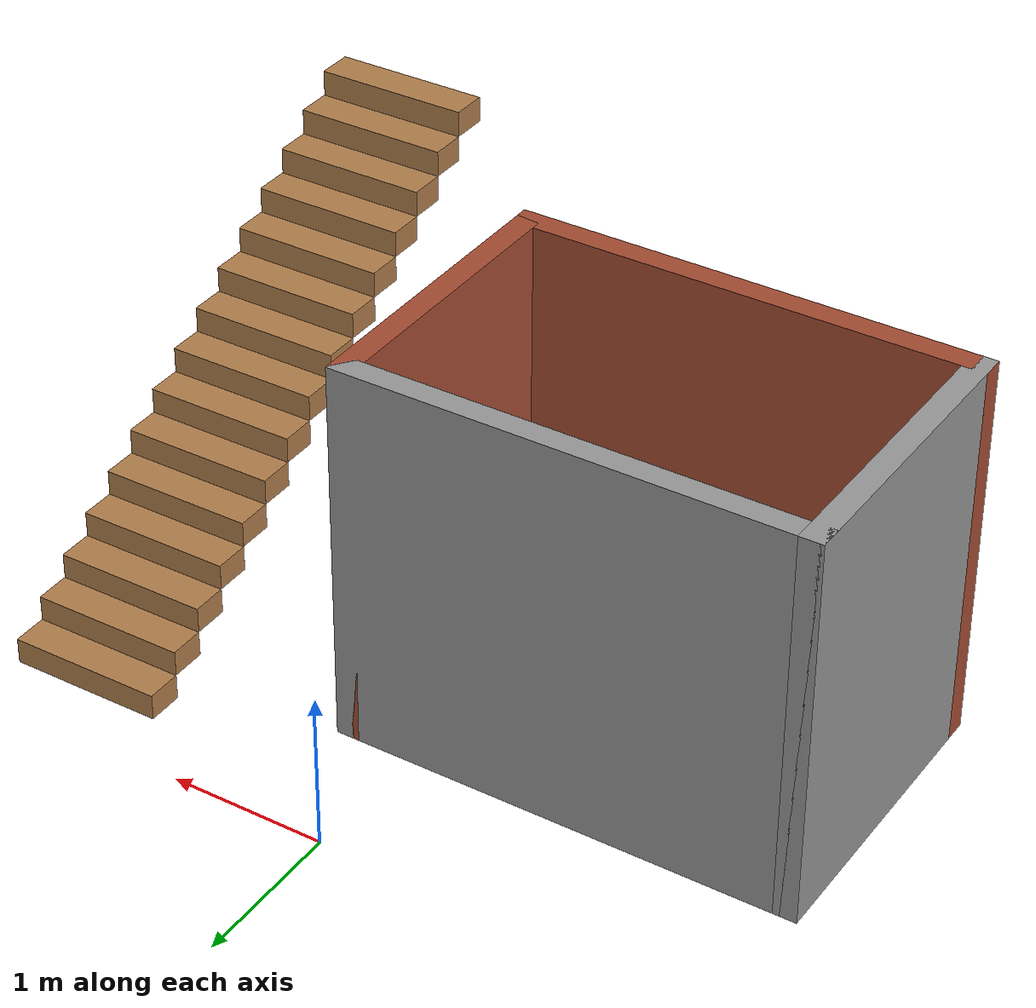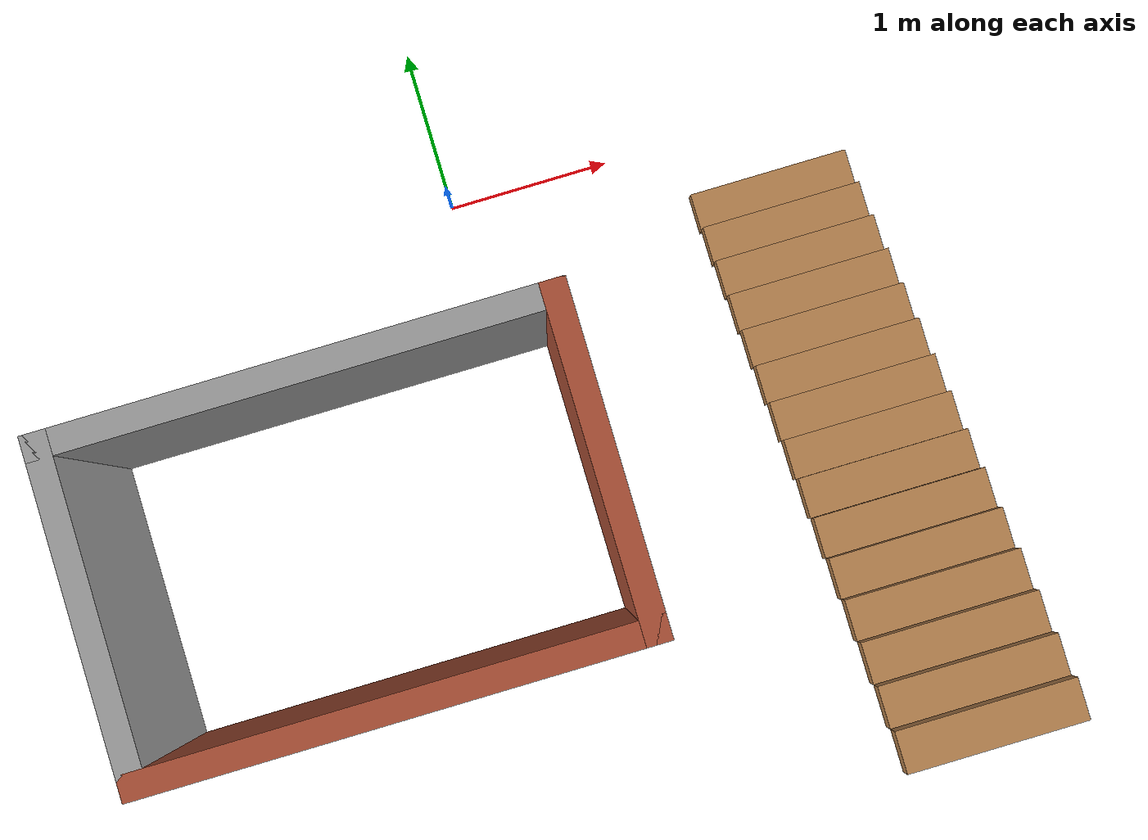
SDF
<?xml version='1.0'?>
<sdf version='1.7'>
  <model name='feka'>
    <pose>-0.0425 -1.93 0 0 -0 0</pose>
    <link name='Stairs_0'>
      <visual name='Stairs_0_Visual_0'>
        <pose>1.9825 1.45333 0.083333 0 -0 0</pose>
        <geometry>
          <box>
            <size>1 0.233333 0.166667</size>
          </box>
        </geometry>
        <material>
          <script>
            <uri>file://media/materials/scripts/gazebo.material</uri>
            <name>Gazebo/Wood</name>
          </script>
          <ambient>1 1 1 1</ambient>
        </material>
        <meta>
          <layer>0</layer>
        </meta>
      </visual>
      <collision name='Stairs_0_Collision_0'>
        <geometry>
          <box>
            <size>1 0.233333 0.166667</size>
          </box>
        </geometry>
        <pose>1.9825 1.45333 0.083333 0 -0 0</pose>
      </collision>
      <visual name='Stairs_0_Visual_1'>
        <pose>1.9825 1.22 0.25 0 -0 0</pose>
        <geometry>
          <box>
            <size>1 0.233333 0.166667</size>
          </box>
        </geometry>
        <material>
          <script>
            <uri>file://media/materials/scripts/gazebo.material</uri>
            <name>Gazebo/Wood</name>
          </script>
          <ambient>1 1 1 1</ambient>
        </material>
        <meta>
          <layer>0</layer>
        </meta>
      </visual>
      <collision name='Stairs_0_Collision_1'>
        <geometry>
          <box>
            <size>1 0.233333 0.166667</size>
          </box>
        </geometry>
        <pose>1.9825 1.22 0.25 0 -0 0</pose>
      </collision>
      <visual name='Stairs_0_Visual_2'>
        <pose>1.9825 0.986667 0.416667 0 -0 0</pose>
        <geometry>
          <box>
            <size>1 0.233333 0.166667</size>
          </box>
        </geometry>
        <material>
          <script>
            <uri>file://media/materials/scripts/gazebo.material</uri>
            <name>Gazebo/Wood</name>
          </script>
          <ambient>1 1 1 1</ambient>
        </material>
        <meta>
          <layer>0</layer>
        </meta>
      </visual>
      <collision name='Stairs_0_Collision_2'>
        <geometry>
          <box>
            <size>1 0.233333 0.166667</size>
          </box>
        </geometry>
        <pose>1.9825 0.986667 0.416667 0 -0 0</pose>
      </collision>
      <visual name='Stairs_0_Visual_3'>
        <pose>1.9825 0.753334 0.583333 0 -0 0</pose>
        <geometry>
          <box>
            <size>1 0.233333 0.166667</size>
          </box>
        </geometry>
        <material>
          <script>
            <uri>file://media/materials/scripts/gazebo.material</uri>
            <name>Gazebo/Wood</name>
          </script>
          <ambient>1 1 1 1</ambient>
        </material>
        <meta>
          <layer>0</layer>
        </meta>
      </visual>
      <collision name='Stairs_0_Collision_3'>
        <geometry>
          <box>
            <size>1 0.233333 0.166667</size>
          </box>
        </geometry>
        <pose>1.9825 0.753334 0.583333 0 -0 0</pose>
      </collision>
      <visual name='Stairs_0_Visual_4'>
        <pose>1.9825 0.52 0.75 0 -0 0</pose>
        <geometry>
          <box>
            <size>1 0.233333 0.166667</size>
          </box>
        </geometry>
        <material>
          <script>
            <uri>file://media/materials/scripts/gazebo.material</uri>
            <name>Gazebo/Wood</name>
          </script>
          <ambient>1 1 1 1</ambient>
        </material>
        <meta>
          <layer>0</layer>
        </meta>
      </visual>
      <collision name='Stairs_0_Collision_4'>
        <geometry>
          <box>
            <size>1 0.233333 0.166667</size>
          </box>
        </geometry>
        <pose>1.9825 0.52 0.75 0 -0 0</pose>
      </collision>
      <visual name='Stairs_0_Visual_5'>
        <pose>1.9825 0.286667 0.916667 0 -0 0</pose>
        <geometry>
          <box>
            <size>1 0.233333 0.166667</size>
          </box>
        </geometry>
        <material>
          <script>
            <uri>file://media/materials/scripts/gazebo.material</uri>
            <name>Gazebo/Wood</name>
          </script>
          <ambient>1 1 1 1</ambient>
        </material>
        <meta>
          <layer>0</layer>
        </meta>
      </visual>
      <collision name='Stairs_0_Collision_5'>
        <geometry>
          <box>
            <size>1 0.233333 0.166667</size>
          </box>
        </geometry>
        <pose>1.9825 0.286667 0.916667 0 -0 0</pose>
      </collision>
      <visual name='Stairs_0_Visual_6'>
        <pose>1.9825 0.053334 1.08333 0 -0 0</pose>
        <geometry>
          <box>
            <size>1 0.233333 0.166667</size>
          </box>
        </geometry>
        <material>
          <script>
            <uri>file://media/materials/scripts/gazebo.material</uri>
            <name>Gazebo/Wood</name>
          </script>
          <ambient>1 1 1 1</ambient>
        </material>
        <meta>
          <layer>0</layer>
        </meta>
      </visual>
      <collision name='Stairs_0_Collision_6'>
        <geometry>
          <box>
            <size>1 0.233333 0.166667</size>
          </box>
        </geometry>
        <pose>1.9825 0.053334 1.08333 0 -0 0</pose>
      </collision>
      <visual name='Stairs_0_Visual_7'>
        <pose>1.9825 -0.18 1.25 0 -0 0</pose>
        <geometry>
          <box>
            <size>1 0.233333 0.166667</size>
          </box>
        </geometry>
        <material>
          <script>
            <uri>file://media/materials/scripts/gazebo.material</uri>
            <name>Gazebo/Wood</name>
          </script>
          <ambient>1 1 1 1</ambient>
        </material>
        <meta>
          <layer>0</layer>
        </meta>
      </visual>
      <collision name='Stairs_0_Collision_7'>
        <geometry>
          <box>
            <size>1 0.233333 0.166667</size>
          </box>
        </geometry>
        <pose>1.9825 -0.18 1.25 0 -0 0</pose>
      </collision>
      <visual name='Stairs_0_Visual_8'>
        <pose>1.9825 -0.413333 1.41667 0 -0 0</pose>
        <geometry>
          <box>
            <size>1 0.233333 0.166667</size>
          </box>
        </geometry>
        <material>
          <script>
            <uri>file://media/materials/scripts/gazebo.material</uri>
            <name>Gazebo/Wood</name>
          </script>
          <ambient>1 1 1 1</ambient>
        </material>
        <meta>
          <layer>0</layer>
        </meta>
      </visual>
      <collision name='Stairs_0_Collision_8'>
        <geometry>
          <box>
            <size>1 0.233333 0.166667</size>
          </box>
        </geometry>
        <pose>1.9825 -0.413333 1.41667 0 -0 0</pose>
      </collision>
      <visual name='Stairs_0_Visual_9'>
        <pose>1.9825 -0.646667 1.58333 0 -0 0</pose>
        <geometry>
          <box>
            <size>1 0.233333 0.166667</size>
          </box>
        </geometry>
        <material>
          <script>
            <uri>file://media/materials/scripts/gazebo.material</uri>
            <name>Gazebo/Wood</name>
          </script>
          <ambient>1 1 1 1</ambient>
        </material>
        <meta>
          <layer>0</layer>
        </meta>
      </visual>
      <collision name='Stairs_0_Collision_9'>
        <geometry>
          <box>
            <size>1 0.233333 0.166667</size>
          </box>
        </geometry>
        <pose>1.9825 -0.646667 1.58333 0 -0 0</pose>
      </collision>
      <visual name='Stairs_0_Visual_10'>
        <pose>1.9825 -0.88 1.75 0 -0 0</pose>
        <geometry>
          <box>
            <size>1 0.233333 0.166667</size>
          </box>
        </geometry>
        <material>
          <script>
            <uri>file://media/materials/scripts/gazebo.material</uri>
            <name>Gazebo/Wood</name>
          </script>
          <ambient>1 1 1 1</ambient>
        </material>
        <meta>
          <layer>0</layer>
        </meta>
      </visual>
      <collision name='Stairs_0_Collision_10'>
        <geometry>
          <box>
            <size>1 0.233333 0.166667</size>
          </box>
        </geometry>
        <pose>1.9825 -0.88 1.75 0 -0 0</pose>
      </collision>
      <visual name='Stairs_0_Visual_11'>
        <pose>1.9825 -1.11333 1.91667 0 -0 0</pose>
        <geometry>
          <box>
            <size>1 0.233333 0.166667</size>
          </box>
        </geometry>
        <material>
          <script>
            <uri>file://media/materials/scripts/gazebo.material</uri>
            <name>Gazebo/Wood</name>
          </script>
          <ambient>1 1 1 1</ambient>
        </material>
        <meta>
          <layer>0</layer>
        </meta>
      </visual>
      <collision name='Stairs_0_Collision_11'>
        <geometry>
          <box>
            <size>1 0.233333 0.166667</size>
          </box>
        </geometry>
        <pose>1.9825 -1.11333 1.91667 0 -0 0</pose>
      </collision>
      <visual name='Stairs_0_Visual_12'>
        <pose>1.9825 -1.34667 2.08333 0 -0 0</pose>
        <geometry>
          <box>
            <size>1 0.233333 0.166667</size>
          </box>
        </geometry>
        <material>
          <script>
            <uri>file://media/materials/scripts/gazebo.material</uri>
            <name>Gazebo/Wood</name>
          </script>
          <ambient>1 1 1 1</ambient>
        </material>
        <meta>
          <layer>0</layer>
        </meta>
      </visual>
      <collision name='Stairs_0_Collision_12'>
        <geometry>
          <box>
            <size>1 0.233333 0.166667</size>
          </box>
        </geometry>
        <pose>1.9825 -1.34667 2.08333 0 -0 0</pose>
      </collision>
      <visual name='Stairs_0_Visual_13'>
        <pose>1.9825 -1.58 2.25 0 -0 0</pose>
        <geometry>
          <box>
            <size>1 0.233333 0.166667</size>
          </box>
        </geometry>
        <material>
          <script>
            <uri>file://media/materials/scripts/gazebo.material</uri>
            <name>Gazebo/Wood</name>
          </script>
          <ambient>1 1 1 1</ambient>
        </material>
        <meta>
          <layer>0</layer>
        </meta>
      </visual>
      <collision name='Stairs_0_Collision_13'>
        <geometry>
          <box>
            <size>1 0.233333 0.166667</size>
          </box>
        </geometry>
        <pose>1.9825 -1.58 2.25 0 -0 0</pose>
      </collision>
      <visual name='Stairs_0_Visual_14'>
        <pose>1.9825 -1.81333 2.41667 0 -0 0</pose>
        <geometry>
          <box>
            <size>1 0.233333 0.166667</size>
          </box>
        </geometry>
        <material>
          <script>
            <uri>file://media/materials/scripts/gazebo.material</uri>
            <name>Gazebo/Wood</name>
          </script>
          <ambient>1 1 1 1</ambient>
        </material>
        <meta>
          <layer>0</layer>
        </meta>
      </visual>
      <collision name='Stairs_0_Collision_14'>
        <geometry>
          <box>
            <size>1 0.233333 0.166667</size>
          </box>
        </geometry>
        <pose>1.9825 -1.81333 2.41667 0 -0 0</pose>
      </collision>
    </link>
    <link name='Wall_0'>
      <collision name='Wall_0_Collision'>
        <geometry>
          <box>
            <size>3 0.15 2.5</size>
          </box>
        </geometry>
        <pose>0 0 1.25 0 -0 0</pose>
      </collision>
      <visual name='Wall_0_Visual'>
        <pose>0 0 1.25 0 -0 0</pose>
        <geometry>
          <box>
            <size>3 0.15 2.5</size>
          </box>
        </geometry>
        <material>
          <script>
            <uri>file://media/materials/scripts/gazebo.material</uri>
            <name>Gazebo/Grey</name>
          </script>
          <ambient>1 1 1 1</ambient>
        </material>
        <meta>
          <layer>0</layer>
        </meta>
      </visual>
      <pose>-0.9825 1.01 0 0 -0 0</pose>
    </link>
    <link name='Wall_1'>
      <collision name='Wall_1_Collision'>
        <geometry>
          <box>
            <size>2 0.15 2.5</size>
          </box>
        </geometry>
        <pose>0 0 1.25 0 -0 0</pose>
      </collision>
      <visual name='Wall_1_Visual'>
        <pose>0 0 1.25 0 -0 0</pose>
        <geometry>
          <box>
            <size>2 0.15 2.5</size>
          </box>
        </geometry>
        <material>
          <script>
            <uri>file://media/materials/scripts/gazebo.material</uri>
            <name>Gazebo/Bricks</name>
          </script>
          <ambient>1 1 1 1</ambient>
        </material>
        <meta>
          <layer>0</layer>
        </meta>
      </visual>
      <pose>0.4425 0.085 0 0 -0 -1.5708</pose>
    </link>
    <link name='Wall_2'>
      <collision name='Wall_2_Collision'>
        <geometry>
          <box>
            <size>3 0.15 2.5</size>
          </box>
        </geometry>
        <pose>0 0 1.25 0 -0 0</pose>
      </collision>
      <visual name='Wall_2_Visual'>
        <pose>0 0 1.25 0 -0 0</pose>
        <geometry>
          <box>
            <size>3 0.15 2.5</size>
          </box>
        </geometry>
        <material>
          <script>
            <uri>file://media/materials/scripts/gazebo.material</uri>
            <name>Gazebo/Bricks</name>
          </script>
          <ambient>1 1 1 1</ambient>
        </material>
        <meta>
          <layer>0</layer>
        </meta>
      </visual>
      <pose>-0.9825 -0.84 0 0 -0 3.14159</pose>
    </link>
    <link name='Wall_3'>
      <collision name='Wall_3_Collision'>
        <geometry>
          <box>
            <size>2 0.15 2.5</size>
          </box>
        </geometry>
        <pose>0 0 1.25 0 -0 0</pose>
      </collision>
      <visual name='Wall_3_Visual'>
        <pose>0 0 1.25 0 -0 0</pose>
        <geometry>
          <box>
            <size>2 0.15 2.5</size>
          </box>
        </geometry>
        <material>
          <script>
            <uri>file://media/materials/scripts/gazebo.material</uri>
            <name>Gazebo/Grey</name>
          </script>
          <ambient>1 1 1 1</ambient>
        </material>
        <meta>
          <layer>0</layer>
        </meta>
      </visual>
      <pose>-2.4075 0.085 0 0 -0 1.5708</pose>
    </link>
    <static>1</static>
  </model>
</sdf>
